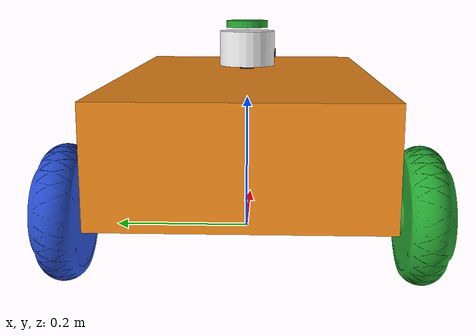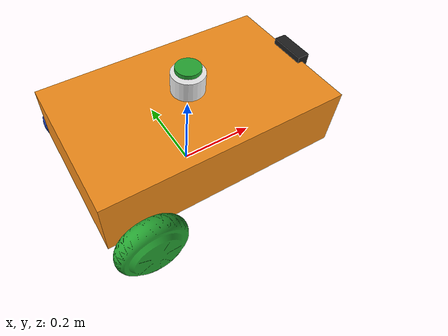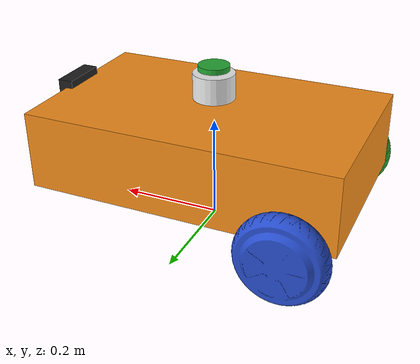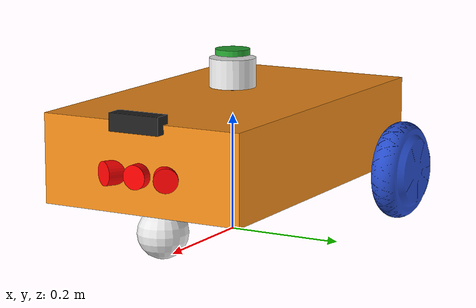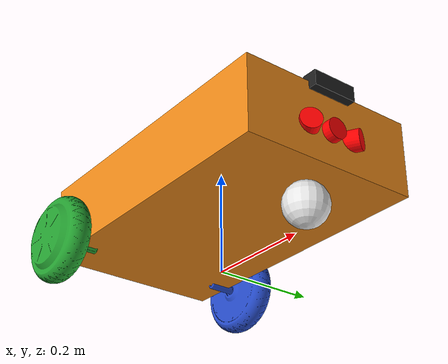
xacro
<?xml version="1.0"?>
<!-- Basic differential drive mobile base -->
<robot xmlns:xacro="http://www.ros.org/wiki/xacro" name="diffdrive_robot">
  <xacro:arg name="prefix" default="" />
  <xacro:arg name="use_mock_hardware" default="false" />
  <xacro:arg name="use_vesc_can" default="false" />
  <xacro:arg name="debug_output" default="false" />

  <xacro:include filename="$(find diff_vesc_can_ros2_control)/urdf/diffbot_description.urdf.xacro" />

  <!-- Import Rviz colors -->
  <xacro:include filename="$(find diff_vesc_can_ros2_control)/urdf/materials/diffbot.materials.xacro" />

  <!-- Import diffbot ros2_control description -->
  <xacro:include filename="$(find diff_vesc_can_ros2_control)/ros2_control/diffbot.ros2_control.xacro" />

  <xacro:diffbot prefix="$(arg prefix)" />

  <xacro:diffbot_ros2_control
    name="DiffBot"
    prefix="$(arg prefix)"
    use_mock_hardware="$(arg use_mock_hardware)"
    use_vesc_can="$(arg use_vesc_can)"
    debug_output="$(arg debug_output)"/>

</robot>

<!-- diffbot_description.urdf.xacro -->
<robot xmlns:xacro="http://www.ros.org/wiki/xacro">

  <xacro:macro name="diffbot" params="prefix">

  <!-- Constants for robot dimensions -->
  <xacro:property name="PI" value="3.1415926535897931"/>

  <xacro:property name="base_mass" value="8.3" /> <!-- arbitrary value for base mass -->
  <xacro:property name="base_width" value="0.360" /> <!-- wheel_separation: 0.360 -->
  <xacro:property name="base_length" value="0.596" /> <!-- body length: 595mm -->
  <xacro:property name="base_height" value="0.15" />

  <xacro:property name="wheel_separation" value="0.39" />

  <xacro:property name="wheel_mass" value="2.2" /> <!-- arbitrary value for wheel mass -->
  <xacro:property name="wheel_len" value="0.055" />
  <xacro:property name="wheel_diameter" value="0.17" /> <!-- 6.5" hoverboard wheel ~ 0.17m diameter -->
  <xacro:property name="wheel_radius" value="${wheel_diameter/2}" />
  <xacro:property name="wheel_mesh_scale" value="0.001" /> <!-- STL spesso in mm: 0.001 per convertirlo in metri -->

  <xacro:property name="wheel_mesh_xyz_left" value="${wheel_radius} 0 0" />
  <xacro:property name="wheel_mesh_rpy_left" value="0 0 ${PI/2}" />

  <xacro:property name="wheel_mesh_xyz_right" value="${-wheel_radius} 0 0" />
  <xacro:property name="wheel_mesh_rpy_right" value="0 0 ${PI/2 + PI}" />

  <xacro:property name="caster_wheel_mass" value="0.1" /> <!-- arbitrary value for caster wheel mass -->
  <xacro:property name="caster_wheel_radius" value="${wheel_diameter/4}" /> <!-- caster diameter = wheel_diameter/2 -->
  <xacro:property name="caster_z_offset" value="${caster_wheel_radius}" />

  <xacro:property name="drive_wheels_from_rear" value="0.0825" />
  <xacro:property name="caster_from_front" value="0.026" />

  <xacro:property name="drive_wheel_x" value="${-base_length/2 + drive_wheels_from_rear}" />
  <xacro:property name="z_offset" value="${wheel_radius}" /> <!-- Wheel center at z=wheel_radius => wheels touch z=0 -->

  <link name="${prefix}base_footprint"/>

  <joint name="${prefix}base_footprint_joint" type="fixed">
    <parent link="${prefix}base_footprint"/>
    <child link="${prefix}base_link"/>
    <origin xyz="0 0 0" rpy="0 0 0"/>
  </joint>

  <!-- Base Link -->
  <link name="${prefix}base_link">
    <collision>
      <origin xyz="0 0 ${wheel_radius + base_height/2}" rpy="0 0 0"/>
      <geometry>
        <box size="${base_length} ${base_width} ${base_height}"/>
      </geometry>
    </collision>

    <visual>
      <origin xyz="0 0 ${wheel_radius + base_height/2}" rpy="0 0 0"/>
      <geometry>
        <box size="${base_length} ${base_width} ${base_height}"/>
      </geometry>
      <material name="orange"/>
    </visual>

    <inertial>
      <origin xyz="0 0 ${wheel_radius + base_height/2}" rpy="0 0 0"/>
      <mass value="${base_mass}"/>
      <inertia
        ixx="${base_mass / 12.0 * (base_width*base_width + base_height*base_height)}" ixy="0.0" ixz="0.0"
        iyy="${base_mass / 12.0 * (base_length*base_length + base_height*base_height)}" iyz="0.0"
        izz="${base_mass / 12.0 * (base_length*base_length + base_width*base_width)}"/>
      </inertial>
    </link>

    <!-- IMU (Adafruit BNO055) -->
    <joint name="${prefix}imu_joint" type="fixed">
      <parent link="${prefix}base_link"/>
      <child link="${prefix}imu_link"/>
      <origin xyz="0 0 ${wheel_radius + base_height + 0.01}" rpy="0 0 0"/>
    </joint>

    <link name="${prefix}imu_link">
      <collision>
        <origin xyz="0 0 0" rpy="0 0 0"/>
        <geometry>
          <box size="0.028 0.020 0.003"/>
        </geometry>
      </collision>

      <visual>
        <origin xyz="0 0 0" rpy="0 0 0"/>
        <geometry>
          <box size="0.028 0.020 0.003"/>
        </geometry>
        <material name="black"/>
      </visual>

      <inertial>
        <origin xyz="0 0 0" rpy="0 0 0"/>
        <mass value="0.01"/>
        <inertia ixx="1e-6" ixy="0" ixz="0" iyy="1e-6" iyz="0" izz="1e-6"/>
      </inertial>
    </link>

    <!-- LiDAR 2D (M200) -->
    <joint name="${prefix}lidar_joint" type="fixed">
      <parent link="${prefix}base_link"/>
      <child link="${prefix}lidar_link"/>
      <origin xyz="0 0 ${wheel_radius + base_height + 0.01 + 0.003 + 0.025}" rpy="0 0 0"/>
    </joint>

    <link name="${prefix}lidar_link">
      <collision>
        <origin xyz="0 0 0" rpy="0 0 0"/>
        <geometry>
          <cylinder length="0.05" radius="0.04"/>
        </geometry>
      </collision>

      <visual>
        <origin xyz="0 0 0" rpy="0 0 0"/>
        <geometry>
          <cylinder length="0.05" radius="0.04"/>
        </geometry>
        <material name="white"/>
      </visual>

      <inertial>
        <origin xyz="0 0 0" rpy="0 0 0"/>
        <mass value="0.10"/>
        <inertia ixx="1e-4" ixy="0" ixz="0" iyy="1e-4" iyz="0" izz="1e-4"/>
      </inertial>
    </link>

    <!-- Depth camera (Aurora930) -->
    <joint name="${prefix}camera_joint" type="fixed">
      <parent link="${prefix}base_link"/>
      <child link="${prefix}camera_link"/>
      <origin xyz="0.30 0 ${wheel_radius + base_height}" rpy="0 0 0"/>
    </joint>

    <link name="${prefix}camera_link">
      <collision>
        <origin xyz="0 0 0" rpy="0 0 0"/>
        <geometry>
          <box size="0.03 0.09 0.03"/>
        </geometry>
      </collision>

      <visual>
        <origin xyz="0 0 0" rpy="0 0 0"/>
        <geometry>
          <box size="0.03 0.09 0.03"/>
        </geometry>
        <material name="black"/>
      </visual>

      <inertial>
        <origin xyz="0 0 0" rpy="0 0 0"/>
        <mass value="0.15"/>
        <inertia ixx="2e-4" ixy="0" ixz="0" iyy="2e-4" iyz="0" izz="2e-4"/>
      </inertial>
    </link>

    <!-- GPS antenna -->
    <joint name="${prefix}gps_joint" type="fixed">
      <parent link="${prefix}base_link"/>
      <child link="${prefix}gps_link"/>
      <origin xyz="0 0 ${wheel_radius + base_height + 0.01 + 0.003 + 0.005 + 0.05 + 0.005}" rpy="0 0 0"/>
    </joint>

    <link name="${prefix}gps_link">
      <collision>
        <origin xyz="0 0 0" rpy="0 0 0"/>
        <geometry>
          <cylinder length="0.01" radius="0.03"/>
        </geometry>
      </collision>

      <visual>
        <origin xyz="0 0 0" rpy="0 0 0"/>
        <geometry>
          <cylinder length="0.01" radius="0.03"/>
        </geometry>
        <material name="green"/>
      </visual>

      <inertial>
        <origin xyz="0 0 0" rpy="0 0 0"/>
        <mass value="0.02"/>
        <inertia ixx="1e-5" ixy="0" ixz="0" iyy="1e-5" iyz="0" izz="1e-5"/>
      </inertial>
    </link>

    <link name="${prefix}sonar_base_link"/>

    <joint name="${prefix}sonar_base_joint" type="fixed">
      <parent link="${prefix}base_link"/>
      <child link="${prefix}sonar_base_link"/>
      <origin xyz="0.2134 0 0.15" rpy="0 0 0"/>
    </joint>

    <!-- Sonar Array (Pico) - 3 sonar frontali -->
    <!-- Sonar Sinistro (-15°) -->
    <joint name="${prefix}sonar_left_joint" type="fixed">
      <parent link="${prefix}base_link"/>
      <child link="${prefix}sonar_left_link"/>
      <origin xyz="0.3 -0.05 0.15" rpy="0 0 -0.523599"/> <!-- Sulla superficie anteriore: 5cm a sinistra -->
    </joint>

    <link name="${prefix}sonar_left_link">
      <collision>
        <origin xyz="0 0 0" rpy="0 0 0"/>
        <geometry>
          <cylinder length="0.01" radius="0.0075"/> <!-- 1.5cm diametro, 1cm altezza -->
        </geometry>
      </collision>

      <visual>
        <origin xyz="0 0 0" rpy="0 1.5708 0"/> <!-- Ruotato 90° per base rivolta in avanti -->
        <geometry>
          <cylinder length="0.03" radius="0.02"/> <!-- 3cm altezza, 4cm diametro per visibilità -->
        </geometry>
        <material name="bright_red">
          <color rgba="1.0 0.0 0.0 1.0"/> <!-- Rosso brillante opaco -->
        </material>
      </visual>

      <inertial>
        <origin xyz="0 0 0" rpy="0 0 0"/>
        <mass value="0.005"/>
        <inertia ixx="1e-8" ixy="0" ixz="0" iyy="1e-8" iyz="0" izz="1e-8"/>
      </inertial>
    </link>

    <!-- Sonar Centrale (0°) -->
    <joint name="${prefix}sonar_center_joint" type="fixed">
      <parent link="${prefix}base_link"/>
      <child link="${prefix}sonar_center_link"/>
      <origin xyz="0.3 0 0.15" rpy="0 0 0"/> <!-- Sulla superficie anteriore: base_length/2 -->
    </joint>

    <link name="${prefix}sonar_center_link">
      <collision>
        <origin xyz="0 0 0" rpy="0 0 0"/>
        <geometry>
          <cylinder length="0.01" radius="0.0075"/> <!-- 1.5cm diametro, 1cm altezza -->
        </geometry>
      </collision>

      <visual>
        <origin xyz="0 0 0" rpy="0 1.5708 0"/> <!-- Ruotato 90° per base rivolta in avanti -->
        <geometry>
          <cylinder length="0.03" radius="0.02"/> <!-- 3cm altezza, 4cm diametro per visibilità -->
        </geometry>
        <material name="bright_red">
          <color rgba="1.0 0.0 0.0 1.0"/> <!-- Rosso brillante opaco -->
        </material>
      </visual>

      <inertial>
        <origin xyz="0 0 0" rpy="0 0 0"/>
        <mass value="0.005"/>
        <inertia ixx="1e-8" ixy="0" ixz="0" iyy="1e-8" iyz="0" izz="1e-8"/>
      </inertial>
    </link>

    <!-- Sonar Destro (+15°) -->
    <joint name="${prefix}sonar_right_joint" type="fixed">
      <parent link="${prefix}base_link"/>
      <child link="${prefix}sonar_right_link"/>
      <origin xyz="0.3 0.05 0.15" rpy="0 0 0.523599"/> <!-- Sulla superficie anteriore: 5cm a destra -->
    </joint>

    <link name="${prefix}sonar_right_link">
      <collision>
        <origin xyz="0 0 0" rpy="0 0 0"/>
        <geometry>
          <cylinder length="0.01" radius="0.0075"/> <!-- 1.5cm diametro, 1cm altezza -->
        </geometry>
      </collision>

      <visual>
        <origin xyz="0 0 0" rpy="0 1.5708 0"/> <!-- Ruotato 90° per base rivolta in avanti -->
        <geometry>
          <cylinder length="0.03" radius="0.02"/> <!-- 3cm altezza, 4cm diametro per visibilità -->
        </geometry>
        <material name="bright_red">
          <color rgba="1.0 0.0 0.0 1.0"/> <!-- Rosso brillante opaco -->
        </material>
      </visual>

      <inertial>
        <origin xyz="0 0 0" rpy="0 0 0"/>
        <mass value="0.005"/>
        <inertia ixx="1e-8" ixy="0" ixz="0" iyy="1e-8" iyz="0" izz="1e-8"/>
      </inertial>
    </link>

    <joint name="${prefix}left_wheel_joint" type="continuous">
      <parent link="${prefix}base_link"/>
      <child link="${prefix}left_wheel"/>
      <origin xyz="${drive_wheel_x} ${wheel_separation/2} ${z_offset}" rpy="0 0 0"/>
      <axis xyz="0 1 0"/>
      <dynamics damping="0.2"/>
      <limit effort="100" velocity="1.0"/>
    </joint>

    <!-- left wheel Link -->
    <link name="${prefix}left_wheel">
      <collision>
        <origin xyz="${wheel_mesh_xyz_left}" rpy="${wheel_mesh_rpy_left}"/>
        <geometry>
          <mesh filename="package://diff_vesc_can_ros2_control/meshes/250W_HoverBoard_Motor.stl" scale="${wheel_mesh_scale} ${wheel_mesh_scale} ${wheel_mesh_scale}"/>
        </geometry>
      </collision>

      <visual>
        <origin xyz="${wheel_mesh_xyz_left}" rpy="${wheel_mesh_rpy_left}"/>
        <geometry>
          <mesh filename="package://diff_vesc_can_ros2_control/meshes/250W_HoverBoard_Motor.stl" scale="${wheel_mesh_scale} ${wheel_mesh_scale} ${wheel_mesh_scale}"/>
        </geometry>
        <material name="blue"/>
      </visual>

      <inertial>
        <origin xyz="${wheel_mesh_xyz_left}" rpy="${wheel_mesh_rpy_left}"/>
        <mass value="${wheel_mass}"/>
        <inertia
          ixx="${wheel_mass / 12.0 * (3*wheel_radius*wheel_radius + wheel_len*wheel_len)}" ixy="0.0" ixz="0.0"
          iyy="${wheel_mass / 12.0 * (3*wheel_radius*wheel_radius + wheel_len*wheel_len)}" iyz="0.0"
          izz="${wheel_mass / 2.0 * wheel_radius*wheel_radius}"/>
        </inertial>
      </link>

    <joint name="${prefix}right_wheel_joint" type="continuous">
      <parent link="${prefix}base_link"/>
      <child link="${prefix}right_wheel"/>
      <origin xyz="${drive_wheel_x} -${wheel_separation/2} ${z_offset}" rpy="0 0 0"/>
      <axis xyz="0 1 0"/>
      <dynamics damping="0.2"/>
      <limit effort="100" velocity="1.0"/>
    </joint>

    <!-- right wheel Link -->
    <link name="${prefix}right_wheel">
      <collision>
        <origin xyz="${wheel_mesh_xyz_right}" rpy="${wheel_mesh_rpy_right}"/>
        <geometry>
          <mesh filename="package://diff_vesc_can_ros2_control/meshes/250W_HoverBoard_Motor.stl" scale="${wheel_mesh_scale} ${wheel_mesh_scale} ${wheel_mesh_scale}"/>
        </geometry>
      </collision>

      <visual>
        <origin xyz="${wheel_mesh_xyz_right}" rpy="${wheel_mesh_rpy_right}"/>
        <geometry>
          <mesh filename="package://diff_vesc_can_ros2_control/meshes/250W_HoverBoard_Motor.stl" scale="${wheel_mesh_scale} ${wheel_mesh_scale} ${wheel_mesh_scale}"/>
        </geometry>
        <material name="green"/>
      </visual>

      <inertial>
        <origin xyz="${wheel_mesh_xyz_right}" rpy="${wheel_mesh_rpy_right}"/>
        <mass value="${wheel_mass}"/>
        <inertia
          ixx="${wheel_mass / 12.0 * (3*wheel_radius*wheel_radius + wheel_len*wheel_len)}" ixy="0.0" ixz="0.0"
          iyy="${wheel_mass / 12.0 * (3*wheel_radius*wheel_radius + wheel_len*wheel_len)}" iyz="0.0"
          izz="${wheel_mass / 2.0 * wheel_radius*wheel_radius}"/>
        </inertial>
      </link>

    <joint name="${prefix}caster_frontal_wheel_joint" type="fixed">
      <parent link="${prefix}base_link"/>
      <child link="${prefix}caster_frontal_wheel"/>
      <origin xyz="${base_length/2 - caster_from_front - caster_wheel_radius} 0 ${caster_z_offset}" rpy="0 0 0"/>
    </joint>

    <!-- caster frontal wheel Link -->
    <link name="${prefix}caster_frontal_wheel">
      <collision>
        <origin xyz="0 0 0" rpy="0 0 0"/>
        <geometry>
          <sphere radius="${caster_wheel_radius}"/>
        </geometry>
      </collision>

      <visual>
        <origin xyz="0 0 0" rpy="0 0 0"/>
        <geometry>
          <sphere radius="${caster_wheel_radius}"/>
        </geometry>
        <material name="white"/>
      </visual>

      <inertial>
        <origin xyz="0 0 0" rpy="0 0 0"/>
        <mass value="${caster_wheel_mass}"/>
        <inertia
          ixx="${caster_wheel_mass * 0.4 * (caster_wheel_radius * caster_wheel_radius)}" ixy="0.0" ixz="0.0"
          iyy="${caster_wheel_mass * 0.4 * (caster_wheel_radius * caster_wheel_radius)}" iyz="0.0"
          izz="${caster_wheel_mass * 0.4 * (caster_wheel_radius * caster_wheel_radius)}"/>
        </inertial>
      </link>

  </xacro:macro>

</robot>
